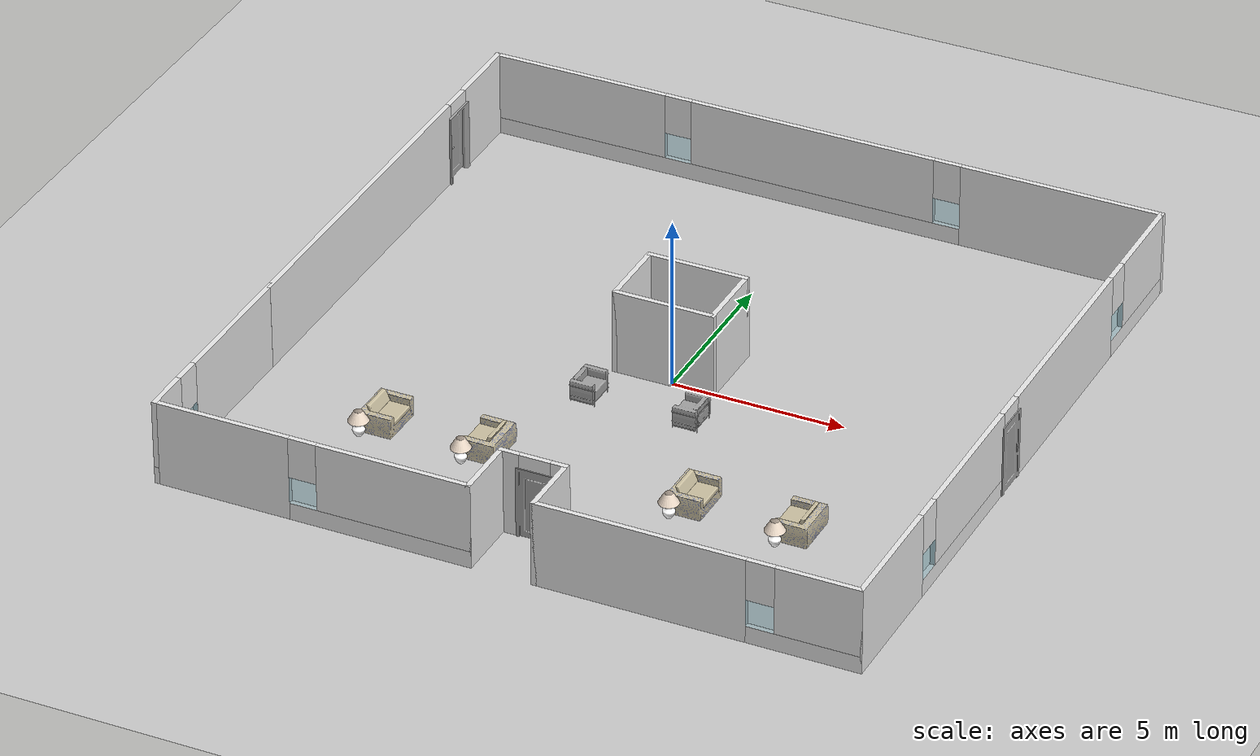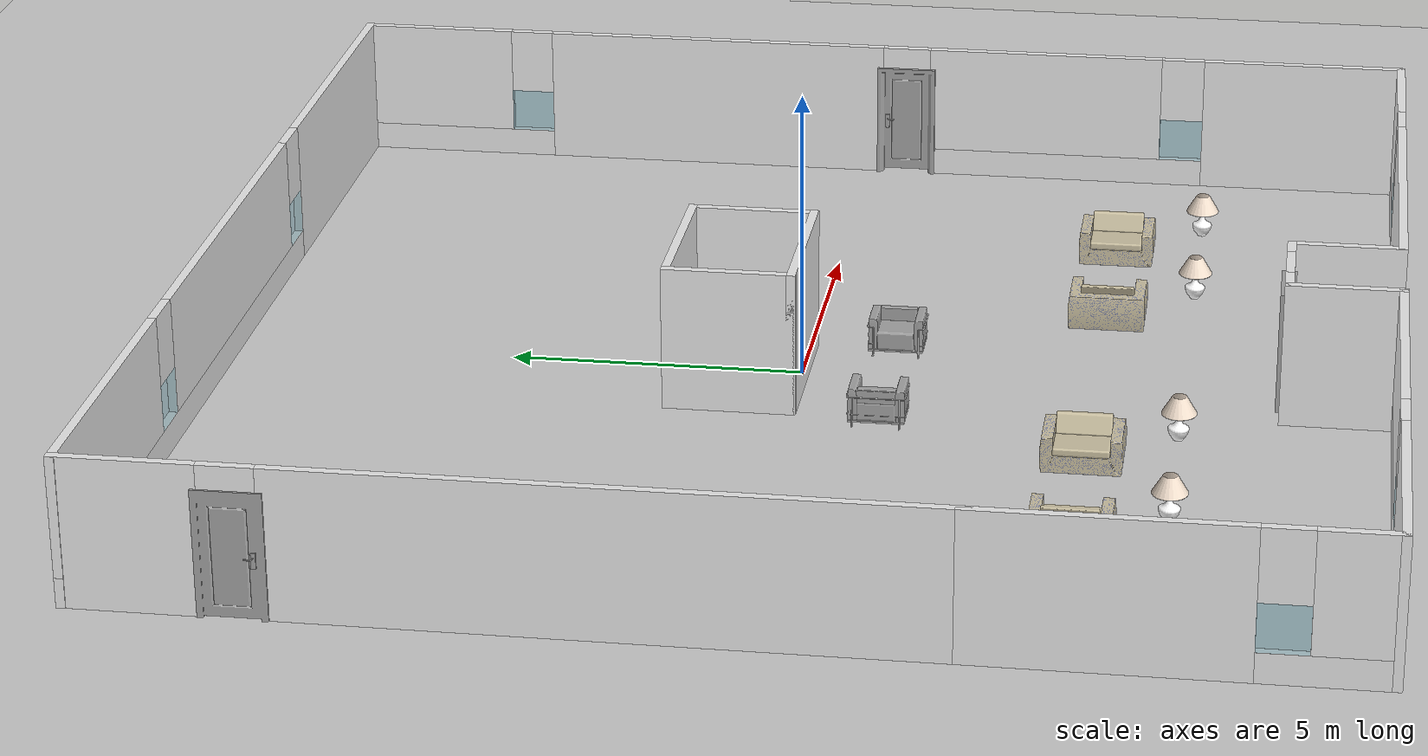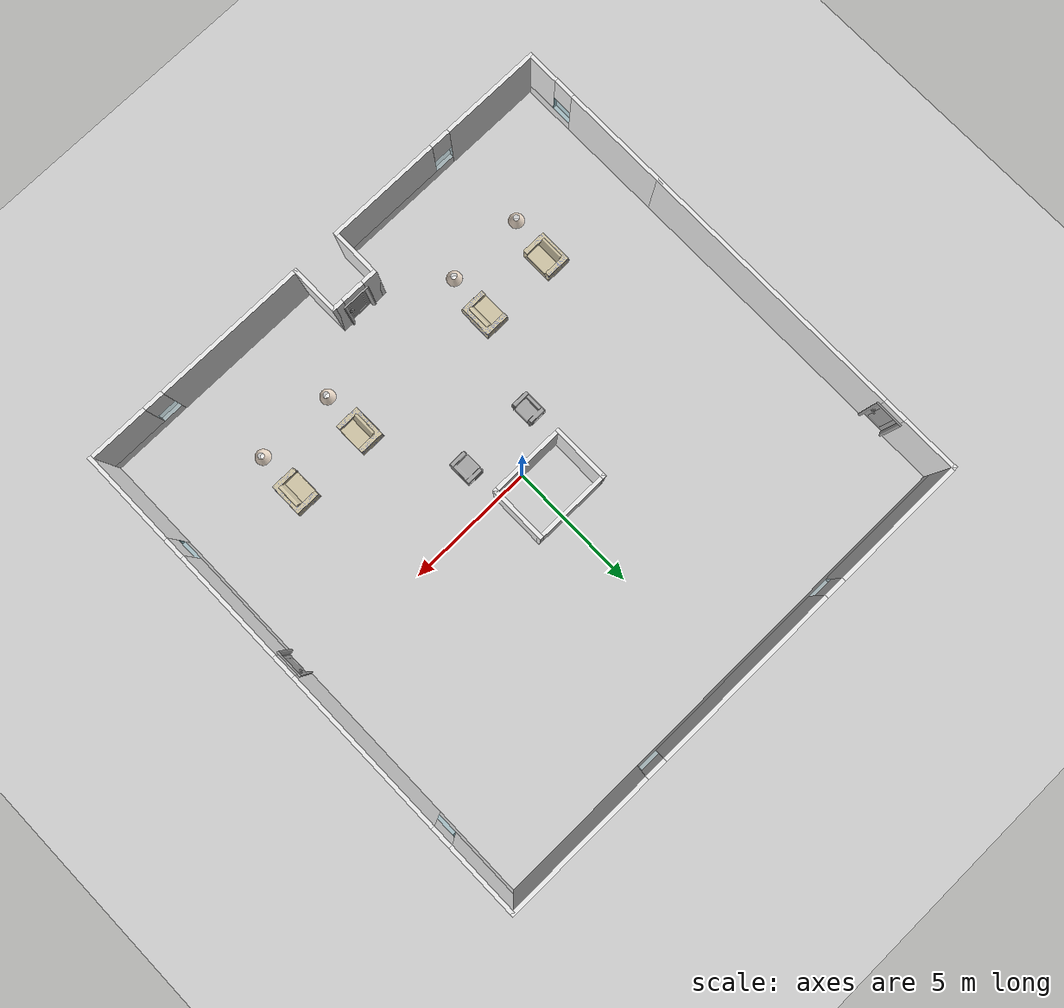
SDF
<sdf version="1.6">
 <world name="default">
  <model name="ground_plane">
   <static>1</static>
   <link name="link">
    <collision name="collision">
     <geometry><plane><normal>0 0 1</normal><size>100 100</size></plane></geometry>
     <surface><friction><ode><mu>1</mu><mu2>1</mu2></ode></friction></surface>
    </collision>
    <visual name="visual">
     <cast_shadows>0</cast_shadows>
     <geometry><plane><normal>0 0 1</normal><size>100 100</size></plane></geometry>
     <material>
      <script><uri>file://media/materials/scripts/gazebo.material</uri><name>Gazebo/Grey</name></script>
     </material>
    </visual>
    <velocity_decay><linear>0</linear><angular>0</angular></velocity_decay>
   </link>
  </model>
  <model name="chair_set_1">
   <link name="link_16">
    <pose>0.07217 0.114259 -0.032065 0 -0 1.57</pose>
    <visual name="visual">
     <geometry><mesh><uri>model://chair_set_1/meshes/chair_frame.dae</uri><scale>1 1 1</scale></mesh></geometry>
     <material>
      <lighting>1</lighting>
      <ambient>0.3 0.3 0.3 1</ambient>
      <diffuse>0.7 0.7 0.7 1</diffuse>
      <specular>0.01 0.01 0.01 1</specular>
      <emissive>0 0 0 1</emissive>
      <shader type="vertex"><normal_map>__default__</normal_map></shader>
     </material>
    </visual>
    <collision name="collision">
     <geometry><mesh><uri>model://chair_set_1/meshes/chair_frame.dae</uri><scale>1 1 1</scale></mesh></geometry>
    </collision>
   </link>
   <link name="link_17">
    <pose>0.069192 0.1237 -0.032065 0 -0 1.57</pose>
    <visual name="visual">
     <geometry><mesh><uri>model://chair_set_1/meshes/chair_cushions.dae</uri><scale>1 1 1</scale></mesh></geometry>
     <material>
      <script>
       <uri>model://chair_set_1/materials/scripts</uri>
       <uri>model://chair_set_1/materials/textures</uri>
       <name>chair_set_1</name>
      </script>
     </material>
    </visual>
    <collision name="collision">
     <geometry><mesh><uri>model://chair_set_1/meshes/chair_cushions.dae</uri><scale>1 1 1</scale></mesh></geometry>
    </collision>
   </link>
   <link name="link_18">
    <pose>0.606963 -0.367766 -0.032065 0 -0 0</pose>
    <visual name="visual">
     <geometry>
      <mesh><uri>model://chair_set_1/meshes/sofa_cushions_back.dae</uri><scale>1 1 1</scale></mesh>
     </geometry>
     <material>
      <script>
       <uri>model://chair_set_1/materials/scripts</uri>
       <uri>model://chair_set_1/materials/textures</uri>
       <name>chair_set_1</name>
      </script>
     </material>
    </visual>
    <collision name="collision">
     <geometry>
      <mesh><uri>model://chair_set_1/meshes/sofa_cushions_back.dae</uri><scale>1 1 1</scale></mesh>
     </geometry>
    </collision>
   </link>
   <static>1</static>
   <pose>-1.75 -1.5 0 0 -0 1.57096</pose>
  </model>
  <model name="chair_set_1_0">
   <link name="link_16">
    <pose>0.07217 0.114259 -0.032065 0 -0 1.57</pose>
    <visual name="visual">
     <geometry><mesh><uri>model://chair_set_1/meshes/chair_frame.dae</uri><scale>1 1 1</scale></mesh></geometry>
     <material>
      <lighting>1</lighting>
      <ambient>0.3 0.3 0.3 1</ambient>
      <diffuse>0.7 0.7 0.7 1</diffuse>
      <specular>0.01 0.01 0.01 1</specular>
      <emissive>0 0 0 1</emissive>
      <shader type="vertex"><normal_map>__default__</normal_map></shader>
     </material>
    </visual>
    <collision name="collision">
     <geometry><mesh><uri>model://chair_set_1/meshes/chair_frame.dae</uri><scale>1 1 1</scale></mesh></geometry>
    </collision>
   </link>
   <link name="link_17">
    <pose>0.069192 0.1237 -0.032065 0 -0 1.57</pose>
    <visual name="visual">
     <geometry><mesh><uri>model://chair_set_1/meshes/chair_cushions.dae</uri><scale>1 1 1</scale></mesh></geometry>
     <material>
      <script>
       <uri>model://chair_set_1/materials/scripts</uri>
       <uri>model://chair_set_1/materials/textures</uri>
       <name>chair_set_1</name>
      </script>
     </material>
    </visual>
    <collision name="collision">
     <geometry><mesh><uri>model://chair_set_1/meshes/chair_cushions.dae</uri><scale>1 1 1</scale></mesh></geometry>
    </collision>
   </link>
   <link name="link_18">
    <pose>0.606963 -0.367766 -0.032065 0 -0 0</pose>
    <visual name="visual">
     <geometry>
      <mesh><uri>model://chair_set_1/meshes/sofa_cushions_back.dae</uri><scale>1 1 1</scale></mesh>
     </geometry>
     <material>
      <script>
       <uri>model://chair_set_1/materials/scripts</uri>
       <uri>model://chair_set_1/materials/textures</uri>
       <name>chair_set_1</name>
      </script>
     </material>
    </visual>
    <collision name="collision">
     <geometry>
      <mesh><uri>model://chair_set_1/meshes/sofa_cushions_back.dae</uri><scale>1 1 1</scale></mesh>
     </geometry>
    </collision>
   </link>
   <static>1</static>
   <pose>1.25 -1.5 0 0 0 -1.5708</pose>
  </model>
  <model name="chair_set_2">
   <link name="link_10">
    <pose>0.020402 -0.647852 0 0 -0 0</pose>
    <visual name="visual">
     <geometry><mesh><uri>model://chair_set_2/meshes/chair_frame.dae</uri><scale>1 1 1</scale></mesh></geometry>
     <material>
      <script>
       <uri>model://chair_set_2/materials/scripts</uri>
       <uri>model://chair_set_2/materials/textures</uri>
       <name>chair_set_2</name>
      </script>
     </material>
    </visual>
    <collision name="collision">
     <geometry><mesh><uri>model://chair_set_2/meshes/chair_frame.dae</uri><scale>1 1 1</scale></mesh></geometry>
    </collision>
   </link>
   <link name="link_11">
    <pose>0.015343 -0.628735 0 0 -0 0</pose>
    <visual name="visual">
     <geometry><mesh><uri>model://chair_set_2/meshes/chair_cushions.dae</uri><scale>1 1 1</scale></mesh></geometry>
     <material>
      <script>
       <uri>model://chair_set_2/materials/scripts</uri>
       <uri>model://chair_set_2/materials/textures</uri>
       <name>chair_set_2</name>
      </script>
     </material>
    </visual>
    <collision name="collision">
     <geometry><mesh><uri>model://chair_set_2/meshes/chair_cushions.dae</uri><scale>1 1 1</scale></mesh></geometry>
    </collision>
   </link>
   <static>1</static>
   <pose>-6 -5 0 0 -0 1.56766</pose>
  </model>
  <model name="chair_set_2_clone">
   <link name="link_10">
    <pose>0.020402 -0.647852 0 0 -0 0</pose>
    <visual name="visual">
     <geometry><mesh><uri>model://chair_set_2/meshes/chair_frame.dae</uri><scale>1 1 1</scale></mesh></geometry>
     <material>
      <script>
       <uri>model://chair_set_2/materials/scripts</uri>
       <uri>model://chair_set_2/materials/textures</uri>
       <name>chair_set_2</name>
      </script>
     </material>
    </visual>
    <collision name="collision">
     <geometry><mesh><uri>model://chair_set_2/meshes/chair_frame.dae</uri><scale>1 1 1</scale></mesh></geometry>
    </collision>
   </link>
   <link name="link_11">
    <pose>0.015343 -0.628735 0 0 -0 0</pose>
    <visual name="visual">
     <geometry><mesh><uri>model://chair_set_2/meshes/chair_cushions.dae</uri><scale>1 1 1</scale></mesh></geometry>
     <material>
      <script>
       <uri>model://chair_set_2/materials/scripts</uri>
       <uri>model://chair_set_2/materials/textures</uri>
       <name>chair_set_2</name>
      </script>
     </material>
    </visual>
    <collision name="collision">
     <geometry><mesh><uri>model://chair_set_2/meshes/chair_cushions.dae</uri><scale>1 1 1</scale></mesh></geometry>
    </collision>
   </link>
   <static>1</static>
   <pose>-3 -5 0 0 0 -1.57423</pose>
  </model>
  <model name="lamp_table_large">
   <link name="link_20">
    <pose>-0.009128 0.000859 0 0 -0 0</pose>
    <visual name="visual">
     <geometry><mesh><uri>model://lamp_table_large/meshes/lamp_base.dae</uri><scale>1 1 1</scale></mesh></geometry>
     <material>
      <lighting>1</lighting>
      <ambient>1 1 1 1</ambient>
      <diffuse>1 1 1 1</diffuse>
      <specular>0.01 0.01 0.01 1</specular>
      <emissive>0 0 0 1</emissive>
     </material>
    </visual>
    <collision name="collision">
     <geometry><mesh><uri>model://lamp_table_large/meshes/lamp_base.dae</uri><scale>1 1 1</scale></mesh></geometry>
    </collision>
   </link>
   <link name="link_21">
    <pose>0.009129 -0.000859 0 0 -0 0</pose>
    <visual name="visual">
     <geometry><mesh><uri>model://lamp_table_large/meshes/lamp_head.dae</uri><scale>1 1 1</scale></mesh></geometry>
     <material>
      <lighting>1</lighting>
      <ambient>0.9568 0.8862 0.8156 1</ambient>
      <diffuse>0.9568 0.8862 0.8156 1</diffuse>
      <specular>0.01 0.01 0.01 1</specular>
      <emissive>0 0 0 1</emissive>
     </material>
    </visual>
    <collision name="collision">
     <geometry><mesh><uri>model://lamp_table_large/meshes/lamp_head.dae</uri><scale>1 1 1</scale></mesh></geometry>
    </collision>
   </link>
   <static>1</static>
   <pose>-6 -6.6 0.536836 0 -0 0</pose>
  </model>
  <model name="office_env_w_complete">
   <pose>-0.07705 -0.0907 0 0 -0 0</pose>
   <link name="Wall_10">
    <pose>-5.46873 -9.925 0 0 -0 0</pose>
    <visual name="Wall_10_Visual_0">
     <pose>-2.62812 0 1.25 0 -0 0</pose>
     <geometry><box><size>3.99376 0.15 2.5</size></box></geometry>
     <material>
      <script>
       <uri>model://office_env_w/materials/scripts</uri>
       <uri>model://office_env_w/materials/textures</uri>
       <name>wall_white</name>
      </script>
     </material>
     <meta><layer>0</layer></meta>
    </visual>
    <collision name="Wall_10_Collision_0">
     <geometry><box><size>3.99376 0.15 2.5</size></box></geometry>
     <pose>-2.62812 0 1.25 0 -0 0</pose>
    </collision>
    <visual name="Wall_10_Visual_1">
     <pose>1.99688 0 0.25 0 -0 0</pose>
     <geometry><box><size>5.25624 0.15 0.5</size></box></geometry>
     <material>
      <script>
       <uri>model://office_env_w/materials/scripts</uri>
       <uri>model://office_env_w/materials/textures</uri>
       <name>wall_white</name>
      </script>
     </material>
     <meta><layer>0</layer></meta>
    </visual>
    <collision name="Wall_10_Collision_1">
     <geometry><box><size>5.25624 0.15 0.5</size></box></geometry>
     <pose>1.99688 0 0.25 0 -0 0</pose>
    </collision>
    <visual name="Wall_10_Visual_2">
     <pose>2.39688 0 1.5 0 -0 0</pose>
     <geometry><box><size>4.45624 0.15 2</size></box></geometry>
     <material>
      <script>
       <uri>model://office_env_w/materials/scripts</uri>
       <uri>model://office_env_w/materials/textures</uri>
       <name>wall_white</name>
      </script>
     </material>
     <meta><layer>0</layer></meta>
    </visual>
    <collision name="Wall_10_Collision_2">
     <geometry><box><size>4.45624 0.15 2</size></box></geometry>
     <pose>2.39688 0 1.5 0 -0 0</pose>
    </collision>
    <visual name="Wall_10_Visual_3">
     <pose>-0.231239 0 1.9 0 -0 0</pose>
     <geometry><box><size>0.8 0.15 1.2</size></box></geometry>
     <material>
      <script>
       <uri>model://office_env_w/materials/scripts</uri>
       <uri>model://office_env_w/materials/textures</uri>
       <name>wall_white</name>
      </script>
     </material>
     <meta><layer>0</layer></meta>
    </visual>
    <collision name="Wall_10_Collision_3">
     <geometry><box><size>0.8 0.15 1.2</size></box></geometry>
     <pose>-0.231239 0 1.9 0 -0 0</pose>
    </collision>
   </link>
   <link name="window::link_2">
    <visual name="visual">
     <pose>0 0 0.9 0 -0 0</pose>
     <geometry><box><size>0.8 0.15 0.8</size></box></geometry>
     <material>
      <lighting>1</lighting>
      <ambient>0.1 0.5 0.6 1</ambient>
      <diffuse>0.1 0.5 0.6 1</diffuse>
      <specular>0.01 0.01 0.01 1</specular>
      <emissive>0 0 0 1</emissive>
     </material>
     <transparency>0.7</transparency>
    </visual>
    <collision name="collision">
     <pose>0 0 0.9 0 -0 0</pose>
     <geometry><box><size>0.8 0.15 0.8</size></box></geometry>
    </collision>
    <pose>-5.69997 -9.925 0 0 -0 0</pose>
   </link>
   <static>1</static>
   <link name="Wall_11">
    <collision name="Wall_11_Collision">
     <geometry><box><size>2 0.15 2.5</size></box></geometry>
     <pose>0 0 1.25 0 -0 0</pose>
    </collision>
    <visual name="Wall_11_Visual">
     <pose>0 0 1.25 0 -0 0</pose>
     <geometry><box><size>2 0.15 2.5</size></box></geometry>
     <material>
      <script>
       <uri>model://office_env_w/materials/scripts</uri>
       <uri>model://office_env_w/materials/textures</uri>
       <name>wall_white</name>
      </script>
     </material>
     <meta><layer>0</layer></meta>
    </visual>
    <pose>-0.918728 -9 0 0 -0 1.5708</pose>
   </link>
   <link name="Wall_12">
    <pose>0.006272 -8.075 0 0 -0 0</pose>
    <visual name="Wall_12_Visual_0">
     <pose>-0.695653 0 1.25 0 -0 0</pose>
     <geometry><box><size>0.608694 0.15 2.5</size></box></geometry>
     <material>
      <script>
       <uri>model://office_env_w/materials/scripts</uri>
       <uri>model://office_env_w/materials/textures</uri>
       <name>wall_white</name>
      </script>
     </material>
     <meta><layer>0</layer></meta>
    </visual>
    <collision name="Wall_12_Collision_0">
     <geometry><box><size>0.608694 0.15 2.5</size></box></geometry>
     <pose>-0.695653 0 1.25 0 -0 0</pose>
    </collision>
    <visual name="Wall_12_Visual_1">
     <pose>0.754347 0 1.25 0 -0 0</pose>
     <geometry><box><size>0.491306 0.15 2.5</size></box></geometry>
     <material>
      <script>
       <uri>model://office_env_w/materials/scripts</uri>
       <uri>model://office_env_w/materials/textures</uri>
       <name>wall_white</name>
      </script>
     </material>
     <meta><layer>0</layer></meta>
    </visual>
    <collision name="Wall_12_Collision_1">
     <geometry><box><size>0.491306 0.15 2.5</size></box></geometry>
     <pose>0.754347 0 1.25 0 -0 0</pose>
    </collision>
    <visual name="Wall_12_Visual_2">
     <pose>0.058694 0 2.25 0 -0 0</pose>
     <geometry><box><size>0.9 0.15 0.5</size></box></geometry>
     <material>
      <script>
       <uri>model://office_env_w/materials/scripts</uri>
       <uri>model://office_env_w/materials/textures</uri>
       <name>wall_white</name>
      </script>
     </material>
     <meta><layer>0</layer></meta>
    </visual>
    <collision name="Wall_12_Collision_2">
     <geometry><box><size>0.9 0.15 0.5</size></box></geometry>
     <pose>0.058694 0 2.25 0 -0 0</pose>
    </collision>
   </link>
   <link name="door_3d::link_1">
    <visual name="visual">
     <geometry><mesh><uri>model://door_3d/meshes/door_v2_door.dae</uri><scale>1 1 1</scale></mesh></geometry>
     <material>
      <script>
       <uri>model://door_3d/materials/scripts</uri>
       <uri>model://door_3d/materials/textures</uri>
       <name>door_3d</name>
      </script>
     </material>
    </visual>
    <collision name="collision">
     <geometry><mesh><uri>model://door_3d/meshes/door_v2_door.dae</uri><scale>1 1 1</scale></mesh></geometry>
    </collision>
    <pose>0.064966 -8.062 0 0 -0 0</pose>
   </link>
   <link name="door_3d::link_2">
    <visual name="visual">
     <geometry><mesh><uri>model://door_3d/meshes/door_v2_handle.dae</uri><scale>1 1 1</scale></mesh></geometry>
     <material>
      <script>
       <uri>model://door_3d/materials/scripts</uri>
       <uri>model://door_3d/materials/textures</uri>
       <name>door_handle</name>
      </script>
     </material>
    </visual>
    <collision name="collision">
     <geometry><mesh><uri>model://door_3d/meshes/door_v2_handle.dae</uri><scale>1 1 1</scale></mesh></geometry>
    </collision>
    <pose>0.064966 -8.062 0 0 -0 0</pose>
   </link>
   <static>1</static>
   <link name="Wall_15">
    <collision name="Wall_15_Collision">
     <geometry><box><size>2 0.15 2.5</size></box></geometry>
     <pose>0 0 1.25 0 -0 0</pose>
    </collision>
    <visual name="Wall_15_Visual">
     <pose>0 0 1.25 0 -0 0</pose>
     <geometry><box><size>2 0.15 2.5</size></box></geometry>
     <material>
      <script>
       <uri>model://office_env_w/materials/scripts</uri>
       <uri>model://office_env_w/materials/textures</uri>
       <name>wall_white</name>
      </script>
     </material>
     <meta><layer>0</layer></meta>
    </visual>
    <pose>0.931272 -9 0 0 0 -1.5708</pose>
   </link>
   <link name="Wall_16">
    <pose>5.48127 -9.925 0 0 -0 0</pose>
    <visual name="Wall_16_Visual_0">
     <pose>-1.61303 0 1.25 0 -0 0</pose>
     <geometry><box><size>6.02393 0.15 2.5</size></box></geometry>
     <material>
      <script>
       <uri>model://office_env_w/materials/scripts</uri>
       <uri>model://office_env_w/materials/textures</uri>
       <name>wall_white</name>
      </script>
     </material>
     <meta><layer>0</layer></meta>
    </visual>
    <collision name="Wall_16_Collision_0">
     <geometry><box><size>6.02393 0.15 2.5</size></box></geometry>
     <pose>-1.61303 0 1.25 0 -0 0</pose>
    </collision>
    <visual name="Wall_16_Visual_1">
     <pose>3.01197 0 0.25 0 -0 0</pose>
     <geometry><box><size>3.22607 0.15 0.5</size></box></geometry>
     <material>
      <script>
       <uri>model://office_env_w/materials/scripts</uri>
       <uri>model://office_env_w/materials/textures</uri>
       <name>wall_white</name>
      </script>
     </material>
     <meta><layer>0</layer></meta>
    </visual>
    <collision name="Wall_16_Collision_1">
     <geometry><box><size>3.22607 0.15 0.5</size></box></geometry>
     <pose>3.01197 0 0.25 0 -0 0</pose>
    </collision>
    <visual name="Wall_16_Visual_2">
     <pose>3.41197 0 1.5 0 -0 0</pose>
     <geometry><box><size>2.42607 0.15 2</size></box></geometry>
     <material>
      <script>
       <uri>model://office_env_w/materials/scripts</uri>
       <uri>model://office_env_w/materials/textures</uri>
       <name>wall_white</name>
      </script>
     </material>
     <meta><layer>0</layer></meta>
    </visual>
    <collision name="Wall_16_Collision_2">
     <geometry><box><size>2.42607 0.15 2</size></box></geometry>
     <pose>3.41197 0 1.5 0 -0 0</pose>
    </collision>
    <visual name="Wall_16_Visual_3">
     <pose>1.79893 0 1.9 0 -0 0</pose>
     <geometry><box><size>0.8 0.15 1.2</size></box></geometry>
     <material>
      <script>
       <uri>model://office_env_w/materials/scripts</uri>
       <uri>model://office_env_w/materials/textures</uri>
       <name>wall_white</name>
      </script>
     </material>
     <meta><layer>0</layer></meta>
    </visual>
    <collision name="Wall_16_Collision_3">
     <geometry><box><size>0.8 0.15 1.2</size></box></geometry>
     <pose>1.79893 0 1.9 0 -0 0</pose>
    </collision>
   </link>
   <link name="window::link_2">
    <visual name="visual">
     <pose>0 0 0.9 0 -0 0</pose>
     <geometry><box><size>0.8 0.15 0.8</size></box></geometry>
     <material>
      <lighting>1</lighting>
      <ambient>0.1 0.5 0.6 1</ambient>
      <diffuse>0.1 0.5 0.6 1</diffuse>
      <specular>0.01 0.01 0.01 1</specular>
      <emissive>0 0 0 1</emissive>
     </material>
     <transparency>0.7</transparency>
    </visual>
    <collision name="collision">
     <pose>0 0 0.9 0 -0 0</pose>
     <geometry><box><size>0.8 0.15 0.8</size></box></geometry>
    </collision>
    <pose>7.2802 -9.925 0 0 -0 0</pose>
   </link>
   <static>1</static>
   <link name="Wall_17">
    <pose>10.0313 0 0 0 -0 1.5708</pose>
    <visual name="Wall_17_Visual_0">
     <pose>-8.12184 0 1.25 0 -0 0</pose>
     <geometry><box><size>3.75631 0.15 2.5</size></box></geometry>
     <material>
      <script>
       <uri>model://office_env_w/materials/scripts</uri>
       <uri>model://office_env_w/materials/textures</uri>
       <name>wall_white</name>
      </script>
     </material>
     <meta><layer>0</layer></meta>
    </visual>
    <collision name="Wall_17_Collision_0">
     <geometry><box><size>3.75631 0.15 2.5</size></box></geometry>
     <pose>-8.12184 0 1.25 0 -0 0</pose>
    </collision>
    <visual name="Wall_17_Visual_1">
     <pose>3.09096 0 1.25 0 -0 0</pose>
     <geometry><box><size>6.45362 0.15 2.5</size></box></geometry>
     <material>
      <script>
       <uri>model://office_env_w/materials/scripts</uri>
       <uri>model://office_env_w/materials/textures</uri>
       <name>wall_white</name>
      </script>
     </material>
     <meta><layer>0</layer></meta>
    </visual>
    <collision name="Wall_17_Collision_1">
     <geometry><box><size>6.45362 0.15 2.5</size></box></geometry>
     <pose>3.09096 0 1.25 0 -0 0</pose>
    </collision>
    <visual name="Wall_17_Visual_2">
     <pose>-3.63977 0 0.25 0 -0 0</pose>
     <geometry><box><size>5.20784 0.15 0.5</size></box></geometry>
     <material>
      <script>
       <uri>model://office_env_w/materials/scripts</uri>
       <uri>model://office_env_w/materials/textures</uri>
       <name>wall_white</name>
      </script>
     </material>
     <meta><layer>0</layer></meta>
    </visual>
    <collision name="Wall_17_Collision_2">
     <geometry><box><size>5.20784 0.15 0.5</size></box></geometry>
     <pose>-3.63977 0 0.25 0 -0 0</pose>
    </collision>
    <visual name="Wall_17_Visual_3">
     <pose>8.15888 0 0.25 0 -0 0</pose>
     <geometry><box><size>3.68223 0.15 0.5</size></box></geometry>
     <material>
      <script>
       <uri>model://office_env_w/materials/scripts</uri>
       <uri>model://office_env_w/materials/textures</uri>
       <name>wall_white</name>
      </script>
     </material>
     <meta><layer>0</layer></meta>
    </visual>
    <collision name="Wall_17_Collision_3">
     <geometry><box><size>3.68223 0.15 0.5</size></box></geometry>
     <pose>8.15888 0 0.25 0 -0 0</pose>
    </collision>
    <visual name="Wall_17_Visual_4">
     <pose>-3.23977 0 1.5 0 -0 0</pose>
     <geometry><box><size>4.40784 0.15 2</size></box></geometry>
     <material>
      <script>
       <uri>model://office_env_w/materials/scripts</uri>
       <uri>model://office_env_w/materials/textures</uri>
       <name>wall_white</name>
      </script>
     </material>
     <meta><layer>0</layer></meta>
    </visual>
    <collision name="Wall_17_Collision_4">
     <geometry><box><size>4.40784 0.15 2</size></box></geometry>
     <pose>-3.23977 0 1.5 0 -0 0</pose>
    </collision>
    <visual name="Wall_17_Visual_5">
     <pose>-3.23977 0 1.5 0 -0 0</pose>
     <geometry><box><size>4.40784 0.15 2</size></box></geometry>
     <material>
      <script>
       <uri>model://office_env_w/materials/scripts</uri>
       <uri>model://office_env_w/materials/textures</uri>
       <name>wall_white</name>
      </script>
     </material>
     <meta><layer>0</layer></meta>
    </visual>
    <collision name="Wall_17_Collision_5">
     <geometry><box><size>4.40784 0.15 2</size></box></geometry>
     <pose>-3.23977 0 1.5 0 -0 0</pose>
    </collision>
    <visual name="Wall_17_Visual_6">
     <pose>8.55889 0 1.5 0 -0 0</pose>
     <geometry><box><size>2.88223 0.15 2</size></box></geometry>
     <material>
      <script>
       <uri>model://office_env_w/materials/scripts</uri>
       <uri>model://office_env_w/materials/textures</uri>
       <name>wall_white</name>
      </script>
     </material>
     <meta><layer>0</layer></meta>
    </visual>
    <collision name="Wall_17_Collision_6">
     <geometry><box><size>2.88223 0.15 2</size></box></geometry>
     <pose>8.55889 0 1.5 0 -0 0</pose>
    </collision>
    <visual name="Wall_17_Visual_7">
     <pose>-5.84369 0 1.9 0 -0 0</pose>
     <geometry><box><size>0.8 0.15 1.2</size></box></geometry>
     <material>
      <script>
       <uri>model://office_env_w/materials/scripts</uri>
       <uri>model://office_env_w/materials/textures</uri>
       <name>wall_white</name>
      </script>
     </material>
     <meta><layer>0</layer></meta>
    </visual>
    <collision name="Wall_17_Collision_7">
     <geometry><box><size>0.8 0.15 1.2</size></box></geometry>
     <pose>-5.84369 0 1.9 0 -0 0</pose>
    </collision>
    <visual name="Wall_17_Visual_8">
     <pose>6.71777 0 1.9 0 -0 0</pose>
     <geometry><box><size>0.8 0.15 1.2</size></box></geometry>
     <material>
      <script>
       <uri>model://office_env_w/materials/scripts</uri>
       <uri>model://office_env_w/materials/textures</uri>
       <name>wall_white</name>
      </script>
     </material>
     <meta><layer>0</layer></meta>
    </visual>
    <collision name="Wall_17_Collision_8">
     <geometry><box><size>0.8 0.15 1.2</size></box></geometry>
     <pose>6.71777 0 1.9 0 -0 0</pose>
    </collision>
    <visual name="Wall_17_Visual_9">
     <pose>-0.585848 0 2.25 0 -0 0</pose>
     <geometry><box><size>0.9 0.15 0.5</size></box></geometry>
     <material>
      <script>
       <uri>model://office_env_w/materials/scripts</uri>
       <uri>model://office_env_w/materials/textures</uri>
       <name>wall_white</name>
      </script>
     </material>
     <meta><layer>0</layer></meta>
    </visual>
    <collision name="Wall_17_Collision_9">
     <geometry><box><size>0.9 0.15 0.5</size></box></geometry>
     <pose>-0.585848 0 2.25 0 -0 0</pose>
    </collision>
    <visual name="Wall_17_Visual_10">
     <pose>-0.585848 0 2.25 0 -0 0</pose>
     <geometry><box><size>0.9 0.15 0.5</size></box></geometry>
     <material>
      <script>
       <uri>model://office_env_w/materials/scripts</uri>
       <uri>model://office_env_w/materials/textures</uri>
       <name>wall_white</name>
      </script>
     </material>
     <meta><layer>0</layer></meta>
    </visual>
    <collision name="Wall_17_Collision_10">
     <geometry><box><size>0.9 0.15 0.5</size></box></geometry>
     <pose>-0.585848 0 2.25 0 -0 0</pose>
    </collision>
   </link>
   <link name="door_3d::link_1">
    <visual name="visual">
     <geometry><mesh><uri>model://door_3d/meshes/door_v2_door.dae</uri><scale>1 1 1</scale></mesh></geometry>
     <material>
      <script>
       <uri>model://door_3d/materials/scripts</uri>
       <uri>model://door_3d/materials/textures</uri>
       <name>door_3d</name>
      </script>
     </material>
    </visual>
    <collision name="collision">
     <geometry><mesh><uri>model://door_3d/meshes/door_v2_door.dae</uri><scale>1 1 1</scale></mesh></geometry>
    </collision>
    <pose>10.018 -0.585848 0 0 -0 1.5708</pose>
   </link>
   <link name="door_3d::link_2">
    <visual name="visual">
     <geometry><mesh><uri>model://door_3d/meshes/door_v2_handle.dae</uri><scale>1 1 1</scale></mesh></geometry>
     <material>
      <script>
       <uri>model://door_3d/materials/scripts</uri>
       <uri>model://door_3d/materials/textures</uri>
       <name>door_handle</name>
      </script>
     </material>
    </visual>
    <collision name="collision">
     <geometry><mesh><uri>model://door_3d/meshes/door_v2_handle.dae</uri><scale>1 1 1</scale></mesh></geometry>
    </collision>
    <pose>10.018 -0.585848 0 0 -0 1.5708</pose>
   </link>
   <static>1</static>
   <link name="window::link_2">
    <visual name="visual">
     <pose>0 0 0.9 0 -0 0</pose>
     <geometry><box><size>0.8 0.15 0.8</size></box></geometry>
     <material>
      <lighting>1</lighting>
      <ambient>0.1 0.5 0.6 1</ambient>
      <diffuse>0.1 0.5 0.6 1</diffuse>
      <specular>0.01 0.01 0.01 1</specular>
      <emissive>0 0 0 1</emissive>
     </material>
     <transparency>0.7</transparency>
    </visual>
    <collision name="collision">
     <pose>0 0 0.9 0 -0 0</pose>
     <geometry><box><size>0.8 0.15 0.8</size></box></geometry>
    </collision>
    <pose>10.0313 -5.84369 0 0 -0 1.5708</pose>
   </link>
   <static>1</static>
   <link name="window::link_2">
    <visual name="visual">
     <pose>0 0 0.9 0 -0 0</pose>
     <geometry><box><size>0.8 0.15 0.8</size></box></geometry>
     <material>
      <lighting>1</lighting>
      <ambient>0.1 0.5 0.6 1</ambient>
      <diffuse>0.1 0.5 0.6 1</diffuse>
      <specular>0.01 0.01 0.01 1</specular>
      <emissive>0 0 0 1</emissive>
     </material>
     <transparency>0.7</transparency>
    </visual>
    <collision name="collision">
     <pose>0 0 0.9 0 -0 0</pose>
     <geometry><box><size>0.8 0.15 0.8</size></box></geometry>
    </collision>
    <pose>10.0313 6.71777 0 0 -0 1.5708</pose>
   </link>
   <static>1</static>
   <link name="Wall_19">
    <pose>-0 9.925 0 0 -0 3.14159</pose>
    <visual name="Wall_19_Visual_0">
     <pose>-7.12533 0 1.25 0 -0 0</pose>
     <geometry><box><size>5.96188 0.15 2.5</size></box></geometry>
     <material>
      <script>
       <uri>model://office_env_w/materials/scripts</uri>
       <uri>model://office_env_w/materials/textures</uri>
       <name>wall_white</name>
      </script>
     </material>
     <meta><layer>0</layer></meta>
    </visual>
    <collision name="Wall_19_Collision_0">
     <geometry><box><size>5.96188 0.15 2.5</size></box></geometry>
     <pose>-7.12533 0 1.25 0 -0 0</pose>
    </collision>
    <visual name="Wall_19_Visual_1">
     <pose>2.98094 0 0.25 0 -0 0</pose>
     <geometry><box><size>14.2507 0.15 0.5</size></box></geometry>
     <material>
      <script>
       <uri>model://office_env_w/materials/scripts</uri>
       <uri>model://office_env_w/materials/textures</uri>
       <name>wall_white</name>
      </script>
     </material>
     <meta><layer>0</layer></meta>
    </visual>
    <collision name="Wall_19_Collision_1">
     <geometry><box><size>14.2507 0.15 0.5</size></box></geometry>
     <pose>2.98094 0 0.25 0 -0 0</pose>
    </collision>
    <visual name="Wall_19_Visual_2">
     <pose>0.326454 0 1.5 0 -0 0</pose>
     <geometry><box><size>7.34169 0.15 2</size></box></geometry>
     <material>
      <script>
       <uri>model://office_env_w/materials/scripts</uri>
       <uri>model://office_env_w/materials/textures</uri>
       <name>wall_white</name>
      </script>
     </material>
     <meta><layer>0</layer></meta>
    </visual>
    <collision name="Wall_19_Collision_2">
     <geometry><box><size>7.34169 0.15 2</size></box></geometry>
     <pose>0.326454 0 1.5 0 -0 0</pose>
    </collision>
    <visual name="Wall_19_Visual_3">
     <pose>7.45179 0 1.5 0 -0 0</pose>
     <geometry><box><size>5.30898 0.15 2</size></box></geometry>
     <material>
      <script>
       <uri>model://office_env_w/materials/scripts</uri>
       <uri>model://office_env_w/materials/textures</uri>
       <name>wall_white</name>
      </script>
     </material>
     <meta><layer>0</layer></meta>
    </visual>
    <collision name="Wall_19_Collision_3">
     <geometry><box><size>5.30898 0.15 2</size></box></geometry>
     <pose>7.45179 0 1.5 0 -0 0</pose>
    </collision>
    <visual name="Wall_19_Visual_4">
     <pose>-3.74439 0 1.9 0 -0 0</pose>
     <geometry><box><size>0.8 0.15 1.2</size></box></geometry>
     <material>
      <script>
       <uri>model://office_env_w/materials/scripts</uri>
       <uri>model://office_env_w/materials/textures</uri>
       <name>wall_white</name>
      </script>
     </material>
     <meta><layer>0</layer></meta>
    </visual>
    <collision name="Wall_19_Collision_4">
     <geometry><box><size>0.8 0.15 1.2</size></box></geometry>
     <pose>-3.74439 0 1.9 0 -0 0</pose>
    </collision>
    <visual name="Wall_19_Visual_5">
     <pose>4.3973 0 1.9 0 -0 0</pose>
     <geometry><box><size>0.8 0.15 1.2</size></box></geometry>
     <material>
      <script>
       <uri>model://office_env_w/materials/scripts</uri>
       <uri>model://office_env_w/materials/textures</uri>
       <name>wall_white</name>
      </script>
     </material>
     <meta><layer>0</layer></meta>
    </visual>
    <collision name="Wall_19_Collision_5">
     <geometry><box><size>0.8 0.15 1.2</size></box></geometry>
     <pose>4.3973 0 1.9 0 -0 0</pose>
    </collision>
   </link>
   <link name="window::link_2">
    <visual name="visual">
     <pose>0 0 0.9 0 -0 0</pose>
     <geometry><box><size>0.8 0.15 0.8</size></box></geometry>
     <material>
      <lighting>1</lighting>
      <ambient>0.1 0.5 0.6 1</ambient>
      <diffuse>0.1 0.5 0.6 1</diffuse>
      <specular>0.01 0.01 0.01 1</specular>
      <emissive>0 0 0 1</emissive>
     </material>
     <transparency>0.7</transparency>
    </visual>
    <collision name="collision">
     <pose>0 0 0.9 0 -0 0</pose>
     <geometry><box><size>0.8 0.15 0.8</size></box></geometry>
    </collision>
    <pose>3.74439 9.925 0 0 -0 3.14159</pose>
   </link>
   <static>1</static>
   <link name="window::link_2">
    <visual name="visual">
     <pose>0 0 0.9 0 -0 0</pose>
     <geometry><box><size>0.8 0.15 0.8</size></box></geometry>
     <material>
      <lighting>1</lighting>
      <ambient>0.1 0.5 0.6 1</ambient>
      <diffuse>0.1 0.5 0.6 1</diffuse>
      <specular>0.01 0.01 0.01 1</specular>
      <emissive>0 0 0 1</emissive>
     </material>
     <transparency>0.7</transparency>
    </visual>
    <collision name="collision">
     <pose>0 0 0.9 0 -0 0</pose>
     <geometry><box><size>0.8 0.15 0.8</size></box></geometry>
    </collision>
    <pose>-4.3973 9.925 0 0 -0 3.14159</pose>
   </link>
   <static>1</static>
   <link name="Wall_2">
    <pose>-10.0187 -6.75 0 0 0 -1.5708</pose>
    <visual name="Wall_2_Visual_0">
     <pose>-1.06854 0 1.25 0 -0 0</pose>
     <geometry><box><size>4.36293 0.15 2.5</size></box></geometry>
     <material>
      <script>
       <uri>model://office_env_w/materials/scripts</uri>
       <uri>model://office_env_w/materials/textures</uri>
       <name>wall_white</name>
      </script>
     </material>
     <meta><layer>0</layer></meta>
    </visual>
    <collision name="Wall_2_Collision_0">
     <geometry><box><size>4.36293 0.15 2.5</size></box></geometry>
     <pose>-1.06854 0 1.25 0 -0 0</pose>
    </collision>
    <visual name="Wall_2_Visual_1">
     <pose>2.18147 0 0.25 0 -0 0</pose>
     <geometry><box><size>2.13707 0.15 0.5</size></box></geometry>
     <material>
      <script>
       <uri>model://office_env_w/materials/scripts</uri>
       <uri>model://office_env_w/materials/textures</uri>
       <name>wall_white</name>
      </script>
     </material>
     <meta><layer>0</layer></meta>
    </visual>
    <collision name="Wall_2_Collision_1">
     <geometry><box><size>2.13707 0.15 0.5</size></box></geometry>
     <pose>2.18147 0 0.25 0 -0 0</pose>
    </collision>
    <visual name="Wall_2_Visual_2">
     <pose>2.58147 0 1.5 0 -0 0</pose>
     <geometry><box><size>1.33707 0.15 2</size></box></geometry>
     <material>
      <script>
       <uri>model://office_env_w/materials/scripts</uri>
       <uri>model://office_env_w/materials/textures</uri>
       <name>wall_white</name>
      </script>
     </material>
     <meta><layer>0</layer></meta>
    </visual>
    <collision name="Wall_2_Collision_2">
     <geometry><box><size>1.33707 0.15 2</size></box></geometry>
     <pose>2.58147 0 1.5 0 -0 0</pose>
    </collision>
    <visual name="Wall_2_Visual_3">
     <pose>1.51293 0 1.9 0 -0 0</pose>
     <geometry><box><size>0.8 0.15 1.2</size></box></geometry>
     <material>
      <script>
       <uri>model://office_env_w/materials/scripts</uri>
       <uri>model://office_env_w/materials/textures</uri>
       <name>wall_white</name>
      </script>
     </material>
     <meta><layer>0</layer></meta>
    </visual>
    <collision name="Wall_2_Collision_3">
     <geometry><box><size>0.8 0.15 1.2</size></box></geometry>
     <pose>1.51293 0 1.9 0 -0 0</pose>
    </collision>
   </link>
   <link name="window::link_2">
    <visual name="visual">
     <pose>0 0 0.9 0 -0 0</pose>
     <geometry><box><size>0.8 0.15 0.8</size></box></geometry>
     <material>
      <lighting>1</lighting>
      <ambient>0.1 0.5 0.6 1</ambient>
      <diffuse>0.1 0.5 0.6 1</diffuse>
      <specular>0.01 0.01 0.01 1</specular>
      <emissive>0 0 0 1</emissive>
     </material>
     <transparency>0.7</transparency>
    </visual>
    <collision name="collision">
     <pose>0 0 0.9 0 -0 0</pose>
     <geometry><box><size>0.8 0.15 0.8</size></box></geometry>
    </collision>
    <pose>-10.0187 -8.26293 0 0 0 -1.57</pose>
   </link>
   <static>1</static>
   <link name="Wall_20">
    <pose>-10.018 3.125 0 0 0 -1.5708</pose>
    <visual name="Wall_20_Visual_0">
     <pose>-5.73803 0 1.25 0 -0 0</pose>
     <geometry><box><size>2.27394 0.15 2.5</size></box></geometry>
     <material>
      <script>
       <uri>model://office_env_w/materials/scripts</uri>
       <uri>model://office_env_w/materials/textures</uri>
       <name>wall_white</name>
      </script>
     </material>
     <meta><layer>0</layer></meta>
    </visual>
    <collision name="Wall_20_Collision_0">
     <geometry><box><size>2.27394 0.15 2.5</size></box></geometry>
     <pose>-5.73803 0 1.25 0 -0 0</pose>
    </collision>
    <visual name="Wall_20_Visual_1">
     <pose>1.58697 0 1.25 0 -0 0</pose>
     <geometry><box><size>10.5761 0.15 2.5</size></box></geometry>
     <material>
      <script>
       <uri>model://office_env_w/materials/scripts</uri>
       <uri>model://office_env_w/materials/textures</uri>
       <name>wall_white</name>
      </script>
     </material>
     <meta><layer>0</layer></meta>
    </visual>
    <collision name="Wall_20_Collision_1">
     <geometry><box><size>10.5761 0.15 2.5</size></box></geometry>
     <pose>1.58697 0 1.25 0 -0 0</pose>
    </collision>
    <visual name="Wall_20_Visual_2">
     <pose>-4.15106 0 2.25 0 -0 0</pose>
     <geometry><box><size>0.9 0.15 0.5</size></box></geometry>
     <material>
      <script>
       <uri>model://office_env_w/materials/scripts</uri>
       <uri>model://office_env_w/materials/textures</uri>
       <name>wall_white</name>
      </script>
     </material>
     <meta><layer>0</layer></meta>
    </visual>
    <collision name="Wall_20_Collision_2">
     <geometry><box><size>0.9 0.15 0.5</size></box></geometry>
     <pose>-4.15106 0 2.25 0 -0 0</pose>
    </collision>
   </link>
   <link name="door_3d::link_1">
    <visual name="visual">
     <geometry><mesh><uri>model://door_3d/meshes/door_v2_door.dae</uri><scale>1 1 1</scale></mesh></geometry>
     <material>
      <script>
       <uri>model://door_3d/materials/scripts</uri>
       <uri>model://door_3d/materials/textures</uri>
       <name>door_3d</name>
      </script>
     </material>
    </visual>
    <collision name="collision">
     <geometry><mesh><uri>model://door_3d/meshes/door_v2_door.dae</uri><scale>1 1 1</scale></mesh></geometry>
    </collision>
    <pose>-10.005 7.27606 0 0 0 -1.5708</pose>
   </link>
   <link name="door_3d::link_2">
    <visual name="visual">
     <geometry><mesh><uri>model://door_3d/meshes/door_v2_handle.dae</uri><scale>1 1 1</scale></mesh></geometry>
     <material>
      <script>
       <uri>model://door_3d/materials/scripts</uri>
       <uri>model://door_3d/materials/textures</uri>
       <name>door_handle</name>
      </script>
     </material>
    </visual>
    <collision name="collision">
     <geometry><mesh><uri>model://door_3d/meshes/door_v2_handle.dae</uri><scale>1 1 1</scale></mesh></geometry>
    </collision>
    <pose>-10.005 7.27606 0 0 0 -1.5708</pose>
   </link>
   <static>1</static>
   <link name="Wall_22">
    <collision name="Wall_22_Collision">
     <geometry><box><size>3 0.15 2.5</size></box></geometry>
     <pose>0 0 1.25 0 -0 0</pose>
    </collision>
    <visual name="Wall_22_Visual">
     <pose>0 0 1.25 0 -0 0</pose>
     <geometry><box><size>3 0.15 2.5</size></box></geometry>
     <material>
      <script>
       <uri>model://office_env_w/materials/scripts</uri>
       <uri>model://office_env_w/materials/textures</uri>
       <name>wall_white</name>
      </script>
     </material>
     <meta><layer>0</layer></meta>
    </visual>
    <pose>-0.163956 0.04737 0 0 -0 3.14159</pose>
   </link>
   <link name="Wall_23">
    <collision name="Wall_23_Collision">
     <geometry><box><size>2.25 0.15 2.5</size></box></geometry>
     <pose>0 0 1.25 0 -0 0</pose>
    </collision>
    <visual name="Wall_23_Visual">
     <pose>0 0 1.25 0 -0 0</pose>
     <geometry><box><size>2.25 0.15 2.5</size></box></geometry>
     <material>
      <script>
       <uri>model://office_env_w/materials/scripts</uri>
       <uri>model://office_env_w/materials/textures</uri>
       <name>wall_white</name>
      </script>
     </material>
     <meta><layer>0</layer></meta>
    </visual>
    <pose>-1.58896 1.09737 0 0 -0 1.5708</pose>
   </link>
   <link name="Wall_24">
    <collision name="Wall_24_Collision">
     <geometry><box><size>3 0.15 2.5</size></box></geometry>
     <pose>0 0 1.25 0 -0 0</pose>
    </collision>
    <visual name="Wall_24_Visual">
     <pose>0 0 1.25 0 -0 0</pose>
     <geometry><box><size>3 0.15 2.5</size></box></geometry>
     <material>
      <script>
       <uri>model://office_env_w/materials/scripts</uri>
       <uri>model://office_env_w/materials/textures</uri>
       <name>wall_white</name>
      </script>
     </material>
     <meta><layer>0</layer></meta>
    </visual>
    <pose>-0.163956 2.14737 0 0 -0 0</pose>
   </link>
   <link name="Wall_25">
    <collision name="Wall_25_Collision">
     <geometry><box><size>2.25 0.15 2.5</size></box></geometry>
     <pose>0 0 1.25 0 -0 0</pose>
    </collision>
    <visual name="Wall_25_Visual">
     <pose>0 0 1.25 0 -0 0</pose>
     <geometry><box><size>2.25 0.15 2.5</size></box></geometry>
     <material>
      <script>
       <uri>model://office_env_w/materials/scripts</uri>
       <uri>model://office_env_w/materials/textures</uri>
       <name>wall_white</name>
      </script>
     </material>
     <meta><layer>0</layer></meta>
    </visual>
    <pose>1.26104 1.09737 0 0 0 -1.5708</pose>
   </link>
   <static>1</static>
  </model>
  <model name="chair_set_2_0">
   <link name="link_10">
    <pose>0.020402 -0.647852 0 0 -0 0</pose>
    <visual name="visual">
     <geometry><mesh><uri>model://chair_set_2/meshes/chair_frame.dae</uri><scale>1 1 1</scale></mesh></geometry>
     <material>
      <script>
       <uri>model://chair_set_2/materials/scripts</uri>
       <uri>model://chair_set_2/materials/textures</uri>
       <name>chair_set_2</name>
      </script>
     </material>
    </visual>
    <collision name="collision">
     <geometry><mesh><uri>model://chair_set_2/meshes/chair_frame.dae</uri><scale>1 1 1</scale></mesh></geometry>
    </collision>
   </link>
   <link name="link_11">
    <pose>0.015343 -0.628735 0 0 -0 0</pose>
    <visual name="visual">
     <geometry><mesh><uri>model://chair_set_2/meshes/chair_cushions.dae</uri><scale>1 1 1</scale></mesh></geometry>
     <material>
      <script>
       <uri>model://chair_set_2/materials/scripts</uri>
       <uri>model://chair_set_2/materials/textures</uri>
       <name>chair_set_2</name>
      </script>
     </material>
    </visual>
    <collision name="collision">
     <geometry><mesh><uri>model://chair_set_2/meshes/chair_cushions.dae</uri><scale>1 1 1</scale></mesh></geometry>
    </collision>
   </link>
   <static>1</static>
   <pose>6 -5 0 0 0 -1.5708</pose>
  </model>
  <model name="chair_set_2_1">
   <link name="link_10">
    <pose>0.020402 -0.647852 0 0 -0 0</pose>
    <visual name="visual">
     <geometry><mesh><uri>model://chair_set_2/meshes/chair_frame.dae</uri><scale>1 1 1</scale></mesh></geometry>
     <material>
      <script>
       <uri>model://chair_set_2/materials/scripts</uri>
       <uri>model://chair_set_2/materials/textures</uri>
       <name>chair_set_2</name>
      </script>
     </material>
    </visual>
    <collision name="collision">
     <geometry><mesh><uri>model://chair_set_2/meshes/chair_frame.dae</uri><scale>1 1 1</scale></mesh></geometry>
    </collision>
   </link>
   <link name="link_11">
    <pose>0.015343 -0.628735 0 0 -0 0</pose>
    <visual name="visual">
     <geometry><mesh><uri>model://chair_set_2/meshes/chair_cushions.dae</uri><scale>1 1 1</scale></mesh></geometry>
     <material>
      <script>
       <uri>model://chair_set_2/materials/scripts</uri>
       <uri>model://chair_set_2/materials/textures</uri>
       <name>chair_set_2</name>
      </script>
     </material>
    </visual>
    <collision name="collision">
     <geometry><mesh><uri>model://chair_set_2/meshes/chair_cushions.dae</uri><scale>1 1 1</scale></mesh></geometry>
    </collision>
   </link>
   <static>1</static>
   <pose>3 -5 0 0 -0 1.5708</pose>
  </model>
  <model name="lamp_table_large_0">
   <link name="link_20">
    <pose>-0.009128 0.000859 0 0 -0 0</pose>
    <visual name="visual">
     <geometry><mesh><uri>model://lamp_table_large/meshes/lamp_base.dae</uri><scale>1 1 1</scale></mesh></geometry>
     <material>
      <lighting>1</lighting>
      <ambient>1 1 1 1</ambient>
      <diffuse>1 1 1 1</diffuse>
      <specular>0.01 0.01 0.01 1</specular>
      <emissive>0 0 0 1</emissive>
     </material>
    </visual>
    <collision name="collision">
     <geometry><mesh><uri>model://lamp_table_large/meshes/lamp_base.dae</uri><scale>1 1 1</scale></mesh></geometry>
    </collision>
   </link>
   <link name="link_21">
    <pose>0.009129 -0.000859 0 0 -0 0</pose>
    <visual name="visual">
     <geometry><mesh><uri>model://lamp_table_large/meshes/lamp_head.dae</uri><scale>1 1 1</scale></mesh></geometry>
     <material>
      <lighting>1</lighting>
      <ambient>0.9568 0.8862 0.8156 1</ambient>
      <diffuse>0.9568 0.8862 0.8156 1</diffuse>
      <specular>0.01 0.01 0.01 1</specular>
      <emissive>0 0 0 1</emissive>
     </material>
    </visual>
    <collision name="collision">
     <geometry><mesh><uri>model://lamp_table_large/meshes/lamp_head.dae</uri><scale>1 1 1</scale></mesh></geometry>
    </collision>
   </link>
   <static>1</static>
   <pose>-3 -6.6 0.536836 0 -0 0</pose>
  </model>
  <model name="lamp_table_large_1">
   <link name="link_20">
    <pose>-0.009128 0.000859 0 0 -0 0</pose>
    <visual name="visual">
     <geometry><mesh><uri>model://lamp_table_large/meshes/lamp_base.dae</uri><scale>1 1 1</scale></mesh></geometry>
     <material>
      <lighting>1</lighting>
      <ambient>1 1 1 1</ambient>
      <diffuse>1 1 1 1</diffuse>
      <specular>0.01 0.01 0.01 1</specular>
      <emissive>0 0 0 1</emissive>
     </material>
    </visual>
    <collision name="collision">
     <geometry><mesh><uri>model://lamp_table_large/meshes/lamp_base.dae</uri><scale>1 1 1</scale></mesh></geometry>
    </collision>
   </link>
   <link name="link_21">
    <pose>0.009129 -0.000859 0 0 -0 0</pose>
    <visual name="visual">
     <geometry><mesh><uri>model://lamp_table_large/meshes/lamp_head.dae</uri><scale>1 1 1</scale></mesh></geometry>
     <material>
      <lighting>1</lighting>
      <ambient>0.9568 0.8862 0.8156 1</ambient>
      <diffuse>0.9568 0.8862 0.8156 1</diffuse>
      <specular>0.01 0.01 0.01 1</specular>
      <emissive>0 0 0 1</emissive>
     </material>
    </visual>
    <collision name="collision">
     <geometry><mesh><uri>model://lamp_table_large/meshes/lamp_head.dae</uri><scale>1 1 1</scale></mesh></geometry>
    </collision>
   </link>
   <static>1</static>
   <pose>6 -6.6 0.536836 0 -0 0</pose>
  </model>
  <model name="lamp_table_large_2">
   <link name="link_20">
    <pose>-0.009128 0.000859 0 0 -0 0</pose>
    <visual name="visual">
     <geometry><mesh><uri>model://lamp_table_large/meshes/lamp_base.dae</uri><scale>1 1 1</scale></mesh></geometry>
     <material>
      <lighting>1</lighting>
      <ambient>1 1 1 1</ambient>
      <diffuse>1 1 1 1</diffuse>
      <specular>0.01 0.01 0.01 1</specular>
      <emissive>0 0 0 1</emissive>
     </material>
    </visual>
    <collision name="collision">
     <geometry><mesh><uri>model://lamp_table_large/meshes/lamp_base.dae</uri><scale>1 1 1</scale></mesh></geometry>
    </collision>
   </link>
   <link name="link_21">
    <pose>0.009129 -0.000859 0 0 -0 0</pose>
    <visual name="visual">
     <geometry><mesh><uri>model://lamp_table_large/meshes/lamp_head.dae</uri><scale>1 1 1</scale></mesh></geometry>
     <material>
      <lighting>1</lighting>
      <ambient>0.9568 0.8862 0.8156 1</ambient>
      <diffuse>0.9568 0.8862 0.8156 1</diffuse>
      <specular>0.01 0.01 0.01 1</specular>
      <emissive>0 0 0 1</emissive>
     </material>
    </visual>
    <collision name="collision">
     <geometry><mesh><uri>model://lamp_table_large/meshes/lamp_head.dae</uri><scale>1 1 1</scale></mesh></geometry>
    </collision>
   </link>
   <static>1</static>
   <pose>3 -6.6 0.536836 0 -0 0</pose>
  </model>
 </world>
</sdf>
